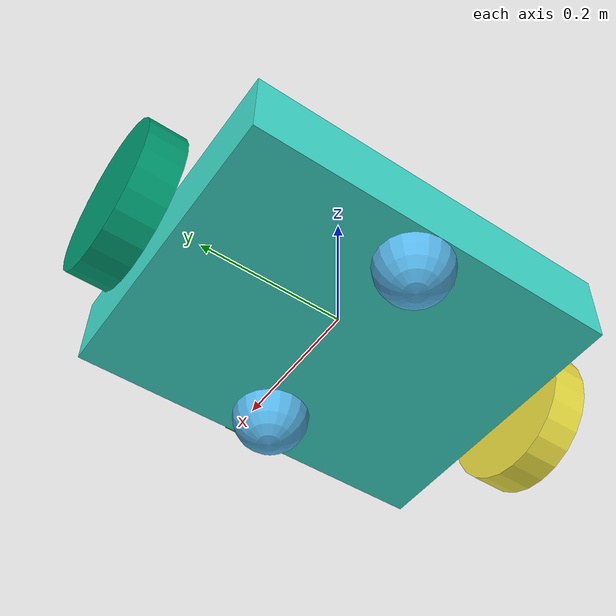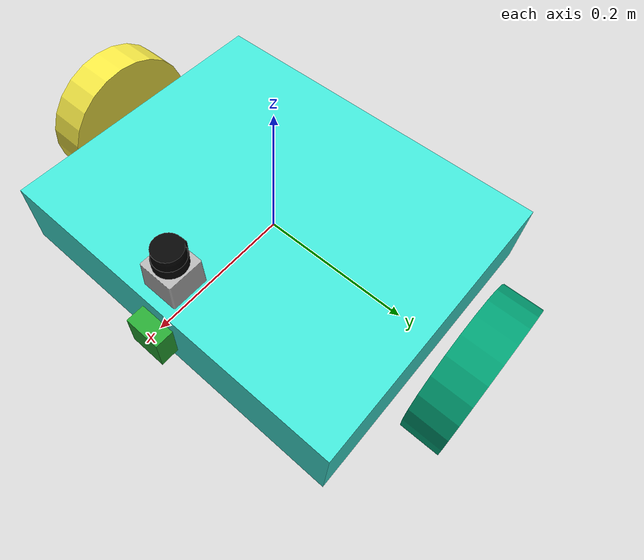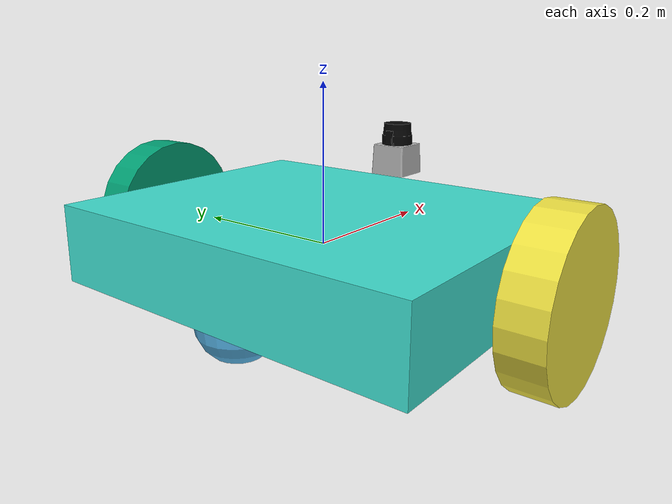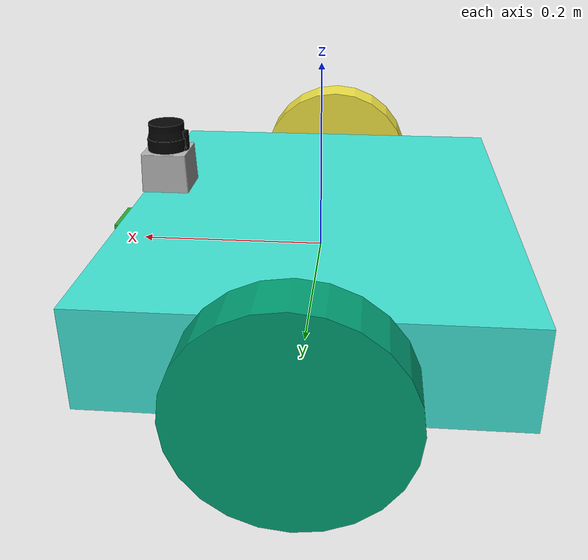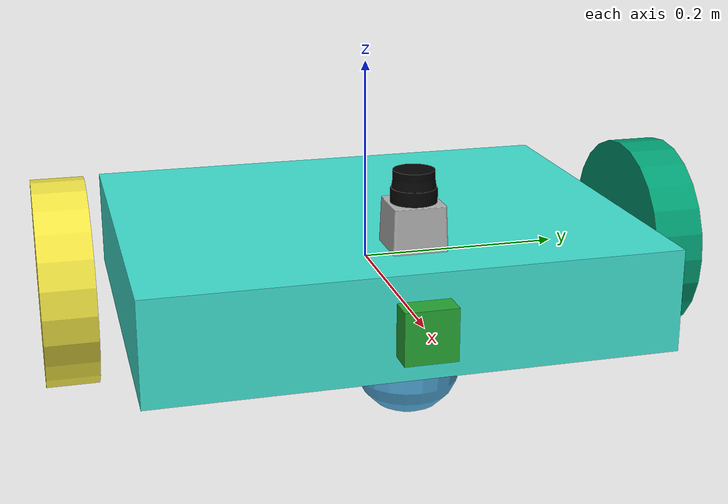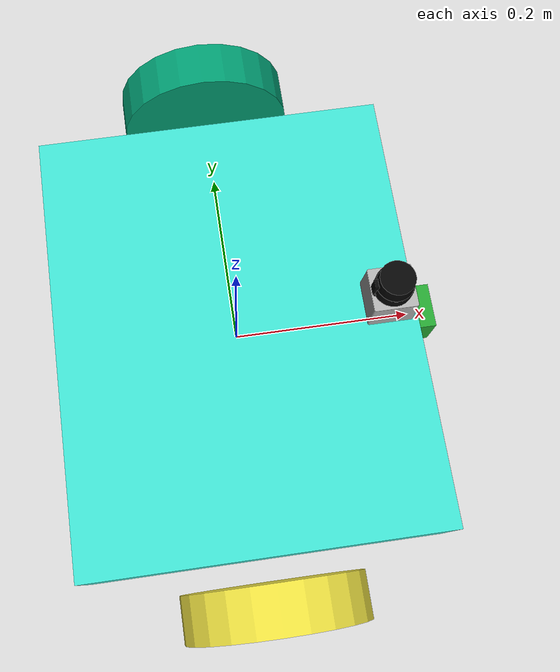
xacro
<?xml version='1.0'?>
<robot name="chesh_bot" xmlns:xacro="http://www.ros.org/wiki/xacro">
<xacro:include filename="$(find chesh_bot)/urdf/chesh_bot.gazebo" />
  <link name="robot_footprint"></link>
  <joint name="robot_footprint_joint" type="fixed">
    <origin xyz="0 0 0" rpy="0 0 0" />
    <parent link="robot_footprint"/>
    <child link="chassis" />
  </joint>
  <link name='chassis'>
    <pose>0 0 0.1 0 0 0</pose>
    <inertial>
      <mass value="15.0"/>
      <origin xyz="0.0 0 0" rpy=" 0 0 0"/>
      <inertia
          ixx="0.1" ixy="0" ixz="0"
          iyy="0.1" iyz="0"
          izz="0.1"
      />
    </inertial>
    <collision name='collision'>
      <origin xyz="0 0 0" rpy=" 0 0 0"/>
      <geometry>
        <box size=".4 .5 .1"/>
      </geometry>
    </collision>
    <visual name='chassis_visual'>
      <origin xyz="0 0 0" rpy=" 0 0 0"/>
      <geometry>
        <box size=".4 .5 .1"/>
      </geometry>
      <material name="turqouise">
        <color rgba="0.25 0.88 0.82 1"/>
      </material>
    </visual>
    <collision name='back_caster_collision'>
      <origin xyz="-0.15 0 -0.05" rpy=" 0 0 0"/>
      <geometry>
        <sphere radius="0.05"/>
      </geometry>
      <surface>
        <friction>
          <ode>
            <mu>0</mu>
            <mu2>0</mu2>
            <slip1>1.0</slip1>
            <slip2>1.0</slip2>
          </ode>
        </friction>
      </surface>
    </collision>
    <visual name='back_caster_visual'>
      <origin xyz="-0.15 0 -0.05" rpy=" 0 0 0"/>
      <geometry>
        <sphere radius="0.05"/>
      </geometry>
    </visual>
    <collision name='front_caster_collision'>
      <origin xyz="0.15 0 -0.05" rpy=" 0 0 0"/>
      <geometry>
        <sphere radius="0.05"/>
      </geometry>
      <surface>
        <friction>
          <ode>
            <mu>0</mu>
            <mu2>0</mu2>
            <slip1>1.0</slip1>
            <slip2>1.0</slip2>
          </ode>
        </friction>
      </surface>
    </collision>
    <visual name='front_caster_visual'>
      <origin xyz="0.15 0 -0.05" rpy=" 0 0 0"/>
      <geometry>
        <sphere radius="0.05"/>
      </geometry>
    </visual>
  </link>
  <!-- left Wheel link -->
  <link name="left_wheel">
    <inertial>
      <mass value="5.0"/>
      <origin xyz="0 0 0" rpy=" 0 1.5707 1.5707"/>
      <inertia
          ixx="0.1" ixy="0" ixz="0"
          iyy="0.1" iyz="0"
          izz="0.1"
      />
    </inertial>
    <collision name="collision">
      <origin xyz="0 0 0" rpy=" 0 1.5707 1.5707"/>
      <geometry>
        <cylinder length="0.05" radius="0.1"/>
      </geometry>
    </collision>
    <visual name="visual">
      <origin xyz="0 0 0" rpy="0 1.5707 1.5707"/>
      <geometry>
        <cylinder length="0.05" radius="0.1"/>
      </geometry>
    </visual>
  </link>
  <!-- left wheel joint -->
  <joint type="continuous" name="left_wheel_hinge">
    <origin xyz="0 0.30 0" rpy="0 0 0"/>
    <child link="left_wheel"/>
    <parent link="chassis"/>
    <axis xyz="0 1 0" rpy="0 0 0"/>
    <limit effort="10000" velocity="1000"/>
    <joint_properties damping="1.0" friction="1.0"/>
  </joint>
  <!-- right Wheel link -->
  <link name="right_wheel">
    <inertial>
      <mass value="5.0"/>
      <origin xyz="0 0 0" rpy="0 1.5707 1.5707"/>
      <inertia
          ixx="0.1" ixy="0" ixz="0"
          iyy="0.1" iyz="0"
          izz="0.1"
      />
    </inertial>
    <collision name="collision">
      <origin xyz="0 0 0" rpy="0 1.5707 1.5707"/>
      <geometry>
        <cylinder length="0.05" radius="0.1"/>
      </geometry>
    </collision>
    <visual name="visual">
      <origin xyz="0 0 0" rpy="0 1.5707 1.5707"/>
      <geometry>
        <cylinder length="0.05" radius="0.1"/>
      </geometry>
    </visual>
  </link>
  <!-- right wheel joint -->
  <joint type="continuous" name="right_wheel_hinge">
    <origin xyz="0 -0.30 0" rpy="0 0 0"/>
    <child link="right_wheel"/>
    <parent link="chassis"/>
    <axis xyz="0 1 0" rpy="0 0 0"/>
    <limit effort="10000" velocity="1000"/>
    <joint_properties damping="1.0" friction="1.0"/>
  </joint>

  <!-- camera link -->
  <link name="camera">
    <inertial>
      <mass value="0.1"/>
      <origin xyz="0 0 0" rpy="0 0 0"/>
      <inertia
          ixx="1e-6" ixy="0" ixz="0"
          iyy="1e-6" iyz="0"
          izz="1e-6"
      />
    </inertial>
    <collision name="collision">
      <origin xyz="0 0 0" rpy="0 0 0"/>
      <geometry>
        <box size="0.05 0.05 0.05"/>
      </geometry>
    </collision>
    <visual name="visual">
      <origin xyz="0 0 0" rpy="0 0 0"/>
      <geometry>
        <box size="0.05 0.05 0.05"/>
      </geometry>
    </visual>
  </link>

  <!-- camera joint -->
  <joint type="fixed" name="camera_joint">
    <origin xyz="0.2 0 0" rpy="0 0 0"/>
    <child link="camera"/>
    <parent link="chassis"/>
    <axis xyz="0 1 0" rpy="0 0 0"/>
    <limit effort="10000" velocity="1000"/>
    <joint_properties damping="1.0" friction="1.0"/>
  </joint>

  <!-- laser rangefinder link -->
  <link name="hokuyo">
    <inertial>
      <mass value="0.1"/>
      <origin xyz="0 0 0" rpy="0 0 0"/>
      <inertia
          ixx="1e-6" ixy="0" ixz="0"
          iyy="1e-6" iyz="0"
          izz="1e-6"
      />
    </inertial>
    <collision name="collision">
      <origin xyz="0 0 0" rpy="0 0 0"/>
      <geometry>
        <box size="0.1 0.1 0.1"/>
      </geometry>
    </collision>
    <visual name="visual">
      <origin xyz="0 0 0" rpy="0 0 0"/>
      <geometry>
        <mesh filename="package://chesh_bot/meshes/hokuyo.dae"/>
      </geometry>
    </visual>
  </link>

  <!-- laser joint -->
  <joint type="fixed" name="laser_joint">
    <origin xyz="0.165 0 0.1" rpy="0 0 0"/>
    <child link="hokuyo"/>
    <parent link="chassis"/>
    <axis xyz="0 1 0" rpy="0 0 0"/>
    <limit effort="10000" velocity="1000"/>
    <joint_properties damping="1.0" friction="1.0"/>
  </joint>

</robot>
